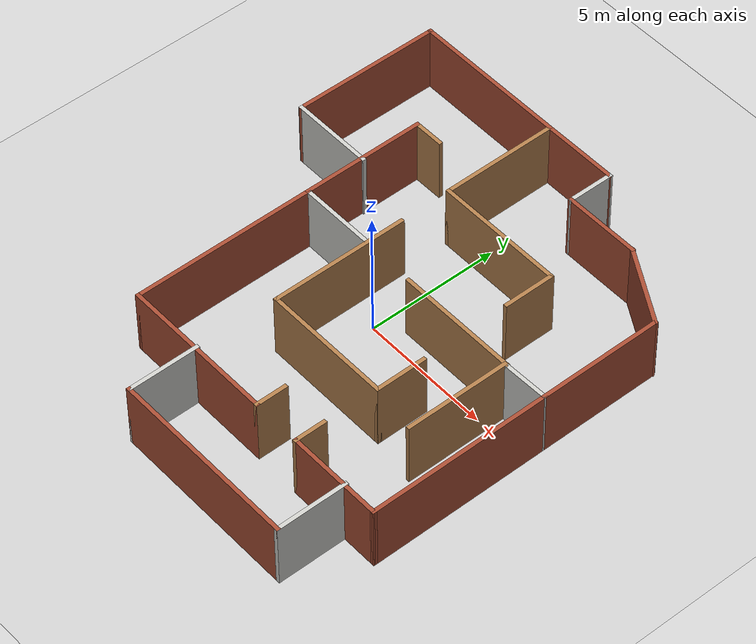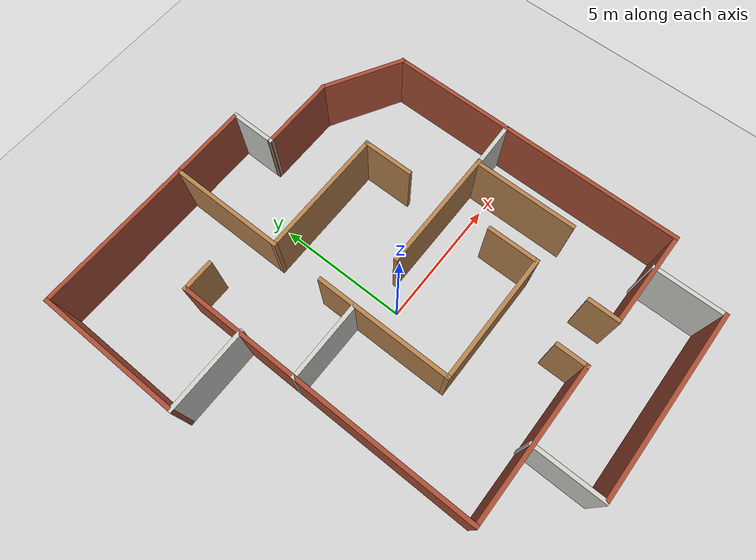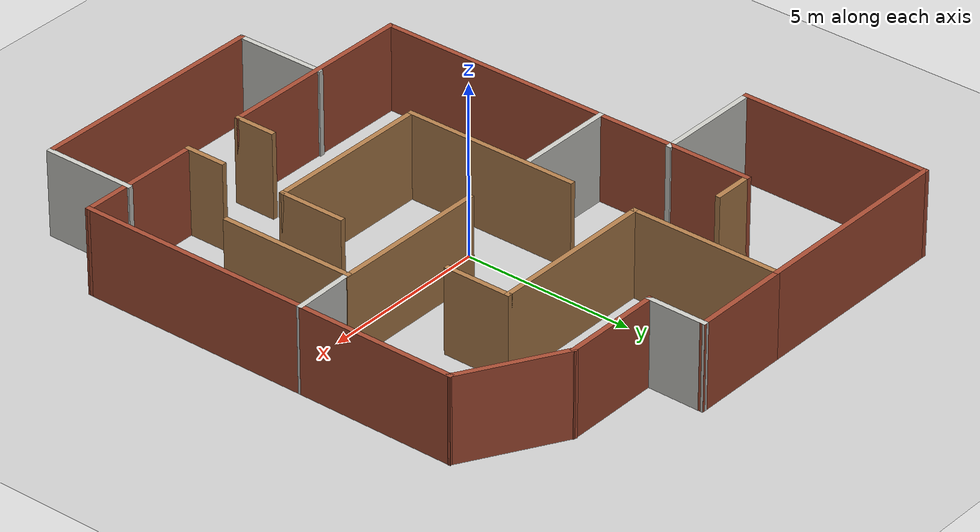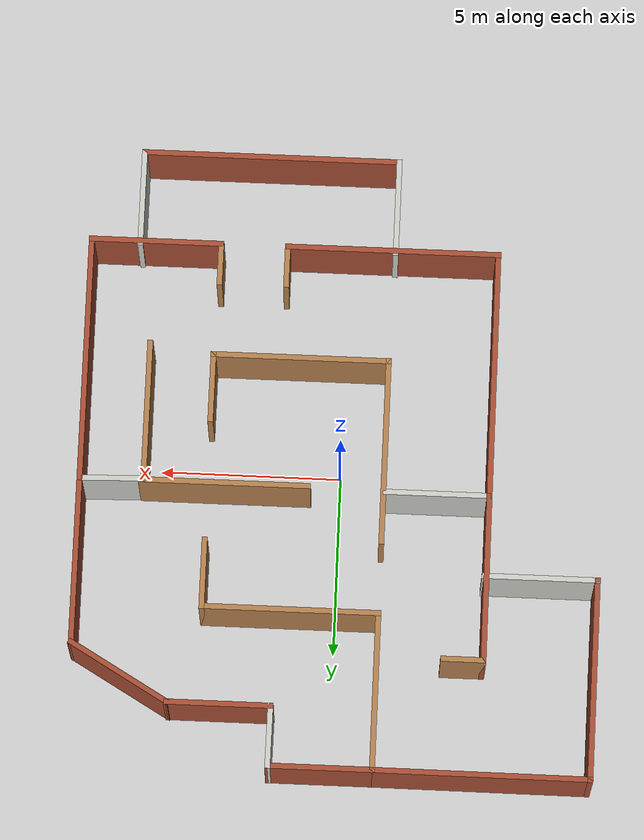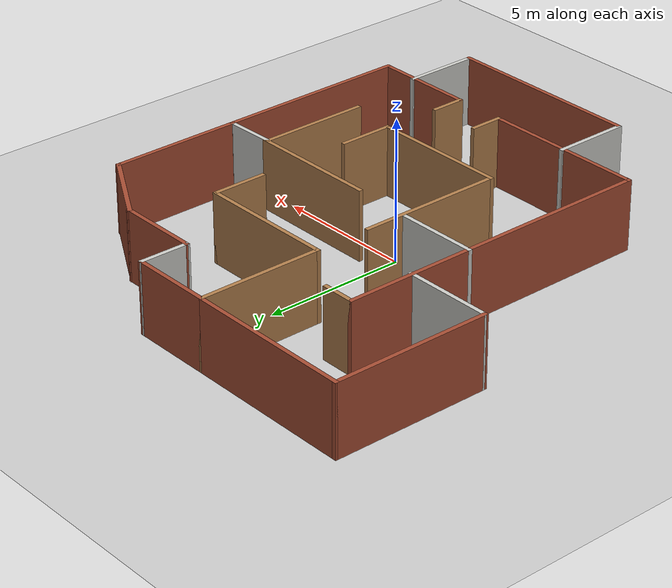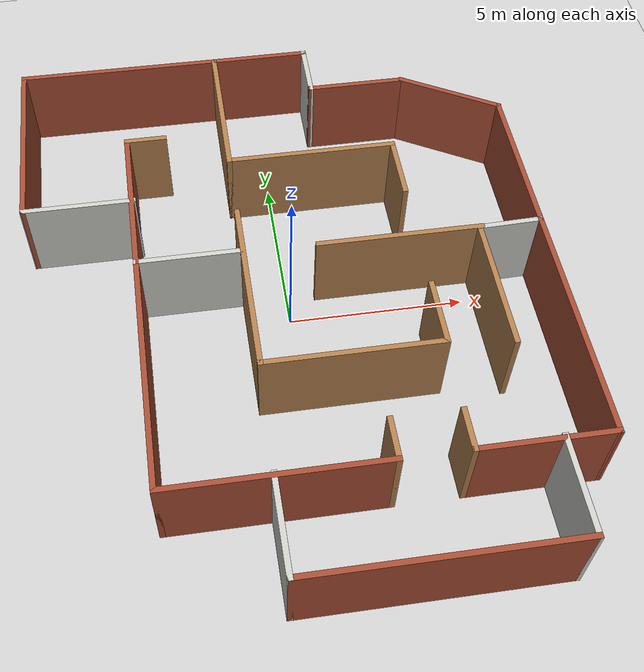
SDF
<sdf version="1.6">
 <world name="default">
  <light name="sun" type="directional">
   <pose>0 0 10 0 -0 0</pose>
   <diffuse>0.8 0.8 0.8 1</diffuse>
   <specular>0.2 0.2 0.2 1</specular>
   <attenuation>
    <range>1000</range>
    <constant>0.9</constant>
    <linear>0.01</linear>
    <quadratic>0.001</quadratic>
   </attenuation>
   <direction>-0.5 0.1 -0.9</direction>
  </light>
  <model name="ground_plane">
   <static>1</static>
   <link name="link">
    <collision name="collision">
     <geometry><plane><normal>0 0 1</normal><size>100 100</size></plane></geometry>
     <surface><friction><ode><mu>100</mu><mu2>50</mu2></ode></friction></surface>
    </collision>
    <visual name="visual">
     <cast_shadows>0</cast_shadows>
     <geometry><plane><normal>0 0 1</normal><size>100 100</size></plane></geometry>
     <material>
      <script><uri>file://media/materials/scripts/gazebo.material</uri><name>Gazebo/Grey</name></script>
     </material>
    </visual>
   </link>
  </model>
  <gravity>0 0 -9.8</gravity>
  <magnetic_field>6e-06 2.3e-05 -4.2e-05</magnetic_field>
  <atmosphere type="adiabatic"/>
  <physics name="default_physics" default="0" type="ode">
   <max_step_size>0.001</max_step_size>
   <real_time_factor>1</real_time_factor>
   <real_time_update_rate>1000</real_time_update_rate>
  </physics>
  <scene><ambient>0.4 0.4 0.4 1</ambient><background>0.7 0.7 0.7 1</background><shadows>1</shadows></scene>
  <audio><device>default</device></audio>
  <spherical_coordinates>
   <surface_model>EARTH_WGS84</surface_model>
   <latitude_deg>0</latitude_deg>
   <longitude_deg>0</longitude_deg>
   <elevation>0</elevation>
   <heading_deg>0</heading_deg>
  </spherical_coordinates>
  <model name="dat160_world1">
   <link name="Wall_10">
    <collision name="Wall_10_Collision">
     <geometry><box><size>4.75 0.15 2.5</size></box></geometry>
     <pose>0 0 1.25 0 -0 0</pose>
    </collision>
    <visual name="Wall_10_Visual">
     <pose>0 0 1.25 0 -0 0</pose>
     <geometry><box><size>4.75 0.15 2.5</size></box></geometry>
     <material>
      <script><uri>file://media/materials/scripts/gazebo.material</uri><name>Gazebo/Wood</name></script>
      <ambient>1 1 1 1</ambient>
     </material>
     <meta><layer>0</layer></meta>
    </visual>
    <pose>3.16564 0.741197 0 0 -0 0</pose>
   </link>
   <link name="Wall_13">
    <collision name="Wall_13_Collision">
     <geometry><box><size>4.75 0.15 2.5</size></box></geometry>
     <pose>0 0 1.25 0 -0 0</pose>
    </collision>
    <visual name="Wall_13_Visual">
     <pose>0 0 1.25 0 -0 0</pose>
     <geometry><box><size>4.75 0.15 2.5</size></box></geometry>
     <material>
      <script><uri>file://media/materials/scripts/gazebo.material</uri><name>Gazebo/Bricks</name></script>
      <ambient>1 1 1 1</ambient>
     </material>
     <meta><layer>0</layer></meta>
    </visual>
    <pose>7.15717 3.06433 0 0 -0 1.5708</pose>
   </link>
   <link name="Wall_14">
    <collision name="Wall_14_Collision">
     <geometry><box><size>3.25 0.15 2.5</size></box></geometry>
     <pose>0 0 1.25 0 -0 0</pose>
    </collision>
    <visual name="Wall_14_Visual">
     <pose>0 0 1.25 0 -0 0</pose>
     <geometry><box><size>3.25 0.15 2.5</size></box></geometry>
     <material>
      <script><uri>file://media/materials/scripts/gazebo.material</uri><name>Gazebo/Bricks</name></script>
      <ambient>1 1 1 1</ambient>
     </material>
     <meta><layer>0</layer></meta>
    </visual>
    <pose>5.81483 6.13933 0 0 -0 2.61799</pose>
   </link>
   <link name="Wall_15">
    <collision name="Wall_15_Collision">
     <geometry><box><size>3 0.15 2.5</size></box></geometry>
     <pose>0 0 1.25 0 -0 0</pose>
    </collision>
    <visual name="Wall_15_Visual">
     <pose>0 0 1.25 0 -0 0</pose>
     <geometry><box><size>3 0.15 2.5</size></box></geometry>
     <material>
      <script><uri>file://media/materials/scripts/gazebo.material</uri><name>Gazebo/Bricks</name></script>
      <ambient>1 1 1 1</ambient>
     </material>
     <meta><layer>0</layer></meta>
    </visual>
    <pose>3.04749 6.91433 0 0 -0 3.14159</pose>
   </link>
   <link name="Wall_17">
    <collision name="Wall_17_Collision">
     <geometry><box><size>4.5 0.15 2.5</size></box></geometry>
     <pose>0 0 1.25 0 -0 0</pose>
    </collision>
    <visual name="Wall_17_Visual">
     <pose>0 0 1.25 0 -0 0</pose>
     <geometry><box><size>4.5 0.15 2.5</size></box></geometry>
     <material>
      <script><uri>file://media/materials/scripts/gazebo.material</uri><name>Gazebo/Wood</name></script>
      <ambient>1 1 1 1</ambient>
     </material>
     <meta><layer>0</layer></meta>
    </visual>
    <pose>-1.21448 6.39319 0 0 -0 1.5708</pose>
   </link>
   <link name="Wall_18">
    <collision name="Wall_18_Collision">
     <geometry><box><size>3 0.15 2.5</size></box></geometry>
     <pose>0 0 1.25 0 -0 0</pose>
    </collision>
    <visual name="Wall_18_Visual">
     <pose>0 0 1.25 0 -0 0</pose>
     <geometry><box><size>3 0.15 2.5</size></box></geometry>
     <material>
      <script><uri>file://media/materials/scripts/gazebo.material</uri><name>Gazebo/Bricks</name></script>
      <ambient>1 1 1 1</ambient>
     </material>
     <meta><layer>0</layer></meta>
    </visual>
    <pose>0.210516 8.56819 0 0 -0 0</pose>
   </link>
   <link name="Wall_19">
    <collision name="Wall_19_Collision">
     <geometry><box><size>1.80392 0.15 2.5</size></box></geometry>
     <pose>0 0 1.25 0 -0 0</pose>
    </collision>
    <visual name="Wall_19_Visual">
     <pose>0 0 1.25 0 -0 0</pose>
     <geometry><box><size>1.80392 0.15 2.5</size></box></geometry>
     <material>
      <script><uri>file://media/materials/scripts/gazebo.material</uri><name>Gazebo/CeilingTiled</name></script>
      <ambient>1 1 1 1</ambient>
     </material>
     <meta><layer>0</layer></meta>
    </visual>
    <pose>1.629 7.74126 0 0 -0 -1.57867</pose>
   </link>
   <link name="Wall_21">
    <collision name="Wall_21_Collision">
     <geometry><box><size>3 0.15 2.5</size></box></geometry>
     <pose>0 0 1.25 0 -0 0</pose>
    </collision>
    <visual name="Wall_21_Visual">
     <pose>0 0 1.25 0 -0 0</pose>
     <geometry><box><size>3 0.15 2.5</size></box></geometry>
     <material>
      <script><uri>file://media/materials/scripts/gazebo.material</uri><name>Gazebo/CeilingTiled</name></script>
      <ambient>1 1 1 1</ambient>
     </material>
     <meta><layer>0</layer></meta>
    </visual>
    <pose>-2.7105 0.810589 0 0 -0 3.14159</pose>
   </link>
   <link name="Wall_22">
    <collision name="Wall_22_Collision">
     <geometry><box><size>7 0.15 2.5</size></box></geometry>
     <pose>0 0 1.25 0 -0 0</pose>
    </collision>
    <visual name="Wall_22_Visual">
     <pose>0 0 1.25 0 -0 0</pose>
     <geometry><box><size>7 0.15 2.5</size></box></geometry>
     <material>
      <script><uri>file://media/materials/scripts/gazebo.material</uri><name>Gazebo/Bricks</name></script>
      <ambient>1 1 1 1</ambient>
     </material>
     <meta><layer>0</layer></meta>
    </visual>
    <pose>-4.1355 -2.61441 0 0 -0 -1.5708</pose>
   </link>
   <link name="Wall_23">
    <collision name="Wall_23_Collision">
     <geometry><box><size>6 0.15 2.5</size></box></geometry>
     <pose>0 0 1.25 0 -0 0</pose>
    </collision>
    <visual name="Wall_23_Visual">
     <pose>0 0 1.25 0 -0 0</pose>
     <geometry><box><size>6 0.15 2.5</size></box></geometry>
     <material>
      <script><uri>file://media/materials/scripts/gazebo.material</uri><name>Gazebo/Bricks</name></script>
      <ambient>1 1 1 1</ambient>
     </material>
     <meta><layer>0</layer></meta>
    </visual>
    <pose>-1.2105 -6.03941 0 0 -0 0</pose>
   </link>
   <link name="Wall_24">
    <collision name="Wall_24_Collision">
     <geometry><box><size>1.25 0.15 2.5</size></box></geometry>
     <pose>0 0 1.25 0 -0 0</pose>
    </collision>
    <visual name="Wall_24_Visual">
     <pose>0 0 1.25 0 -0 0</pose>
     <geometry><box><size>1.25 0.15 2.5</size></box></geometry>
     <material>
      <script><uri>file://media/materials/scripts/gazebo.material</uri><name>Gazebo/Wood</name></script>
      <ambient>1 1 1 1</ambient>
     </material>
     <meta><layer>0</layer></meta>
    </visual>
    <pose>1.7145 -5.48941 0 0 -0 1.5708</pose>
   </link>
   <link name="Wall_26">
    <collision name="Wall_26_Collision">
     <geometry><box><size>4 0.15 2.5</size></box></geometry>
     <pose>0 0 1.25 0 -0 0</pose>
    </collision>
    <visual name="Wall_26_Visual">
     <pose>0 0 1.25 0 -0 0</pose>
     <geometry><box><size>4 0.15 2.5</size></box></geometry>
     <material>
      <script><uri>file://media/materials/scripts/gazebo.material</uri><name>Gazebo/Wood</name></script>
      <ambient>1 1 1 1</ambient>
     </material>
     <meta><layer>0</layer></meta>
    </visual>
    <pose>5.39924 -1.20693 0 0 -0 -1.5708</pose>
   </link>
   <link name="Wall_29">
    <collision name="Wall_29_Collision">
     <geometry><box><size>1.25 0.15 2.5</size></box></geometry>
     <pose>0 0 1.25 0 -0 0</pose>
    </collision>
    <visual name="Wall_29_Visual">
     <pose>0 0 1.25 0 -0 0</pose>
     <geometry><box><size>1.25 0.15 2.5</size></box></geometry>
     <material>
      <script><uri>file://media/materials/scripts/gazebo.material</uri><name>Gazebo/Wood</name></script>
      <ambient>1 1 1 1</ambient>
     </material>
     <meta><layer>0</layer></meta>
    </visual>
    <pose>3.5645 -5.48941 0 0 -0 -1.5708</pose>
   </link>
   <link name="Wall_3">
    <collision name="Wall_3_Collision">
     <geometry><box><size>5 0.15 2.5</size></box></geometry>
     <pose>0 0 1.25 0 -0 0</pose>
    </collision>
    <visual name="Wall_3_Visual">
     <pose>0 0 1.25 0 -0 0</pose>
     <geometry><box><size>5 0.15 2.5</size></box></geometry>
     <material>
      <script><uri>file://media/materials/scripts/gazebo.material</uri><name>Gazebo/Wood</name></script>
      <ambient>1 1 1 1</ambient>
     </material>
     <meta><layer>0</layer></meta>
    </visual>
    <pose>1.21052 4.21819 0 0 -0 0</pose>
   </link>
   <link name="Wall_30">
    <collision name="Wall_30_Collision">
     <geometry><box><size>3.75 0.15 2.5</size></box></geometry>
     <pose>0 0 1.25 0 -0 0</pose>
    </collision>
    <visual name="Wall_30_Visual">
     <pose>0 0 1.25 0 -0 0</pose>
     <geometry><box><size>3.75 0.15 2.5</size></box></geometry>
     <material>
      <script><uri>file://media/materials/scripts/gazebo.material</uri><name>Gazebo/Bricks</name></script>
      <ambient>1 1 1 1</ambient>
     </material>
     <meta><layer>0</layer></meta>
    </visual>
    <pose>5.3645 -6.03941 0 0 -0 0</pose>
   </link>
   <link name="Wall_31">
    <collision name="Wall_31_Collision">
     <geometry><box><size>6.95374 0.15 2.5</size></box></geometry>
     <pose>0 0 1.25 0 -0 0</pose>
    </collision>
    <visual name="Wall_31_Visual">
     <pose>0 0 1.25 0 -0 0</pose>
     <geometry><box><size>6.95374 0.15 2.5</size></box></geometry>
     <material>
      <script><uri>file://media/materials/scripts/gazebo.material</uri><name>Gazebo/Bricks</name></script>
      <ambient>1 1 1 1</ambient>
     </material>
     <meta><layer>0</layer></meta>
    </visual>
    <pose>7.16083 -2.63754 0 0 -0 1.57187</pose>
   </link>
   <link name="Wall_33">
    <collision name="Wall_33_Collision">
     <geometry><box><size>5.25 0.15 2.5</size></box></geometry>
     <pose>0 0 1.25 0 -0 0</pose>
    </collision>
    <visual name="Wall_33_Visual">
     <pose>0 0 1.25 0 -0 0</pose>
     <geometry><box><size>5.25 0.15 2.5</size></box></geometry>
     <material>
      <script><uri>file://media/materials/scripts/gazebo.material</uri><name>Gazebo/Wood</name></script>
      <ambient>1 1 1 1</ambient>
     </material>
     <meta><layer>0</layer></meta>
    </visual>
    <pose>-1.21448 -0.331806 0 0 -0 1.5708</pose>
   </link>
   <link name="Wall_35">
    <collision name="Wall_35_Collision">
     <geometry><box><size>4.75 0.15 2.5</size></box></geometry>
     <pose>0 0 1.25 0 -0 0</pose>
    </collision>
    <visual name="Wall_35_Visual">
     <pose>0 0 1.25 0 -0 0</pose>
     <geometry><box><size>4.75 0.15 2.5</size></box></geometry>
     <material>
      <script><uri>file://media/materials/scripts/gazebo.material</uri><name>Gazebo/Bricks</name></script>
      <ambient>1 1 1 1</ambient>
     </material>
     <meta><layer>0</layer></meta>
    </visual>
    <pose>-4.1355 3.11059 0 0 -0 1.5708</pose>
   </link>
   <link name="Wall_36">
    <collision name="Wall_36_Collision">
     <geometry><box><size>1.25 0.15 2.5</size></box></geometry>
     <pose>0 0 1.25 0 -0 0</pose>
    </collision>
    <visual name="Wall_36_Visual">
     <pose>0 0 1.25 0 -0 0</pose>
     <geometry><box><size>1.25 0.15 2.5</size></box></geometry>
     <material>
      <script><uri>file://media/materials/scripts/gazebo.material</uri><name>Gazebo/Wood</name></script>
      <ambient>1 1 1 1</ambient>
     </material>
     <meta><layer>0</layer></meta>
    </visual>
    <pose>-3.5855 5.41059 0 0 -0 0</pose>
   </link>
   <link name="Wall_38">
    <collision name="Wall_38_Collision">
     <geometry><box><size>3.25 0.15 2.5</size></box></geometry>
     <pose>0 0 1.25 0 -0 0</pose>
    </collision>
    <visual name="Wall_38_Visual">
     <pose>0 0 1.25 0 -0 0</pose>
     <geometry><box><size>3.25 0.15 2.5</size></box></geometry>
     <material>
      <script><uri>file://media/materials/scripts/gazebo.material</uri><name>Gazebo/CeilingTiled</name></script>
      <ambient>1 1 1 1</ambient>
     </material>
     <meta><layer>0</layer></meta>
    </visual>
    <pose>-5.63431 3.05426 0 0 -0 3.14159</pose>
   </link>
   <link name="Wall_39">
    <collision name="Wall_39_Collision">
     <geometry><box><size>5.68548 0.15 2.5</size></box></geometry>
     <pose>0 0 1.25 0 -0 0</pose>
    </collision>
    <visual name="Wall_39_Visual">
     <pose>0 0 1.25 0 -0 0</pose>
     <geometry><box><size>5.68548 0.15 2.5</size></box></geometry>
     <material>
      <script><uri>file://media/materials/scripts/gazebo.material</uri><name>Gazebo/Bricks</name></script>
      <ambient>1 1 1 1</ambient>
     </material>
     <meta><layer>0</layer></meta>
    </visual>
    <pose>-7.17274 5.82178 0 0 -0 1.56662</pose>
   </link>
   <link name="Wall_4">
    <collision name="Wall_4_Collision">
     <geometry><box><size>2 0.15 2.5</size></box></geometry>
     <pose>0 0 1.25 0 -0 0</pose>
    </collision>
    <visual name="Wall_4_Visual">
     <pose>0 0 1.25 0 -0 0</pose>
     <geometry><box><size>2 0.15 2.5</size></box></geometry>
     <material>
      <script><uri>file://media/materials/scripts/gazebo.material</uri><name>Gazebo/Wood</name></script>
      <ambient>1 1 1 1</ambient>
     </material>
     <meta><layer>0</layer></meta>
    </visual>
    <pose>3.63552 3.29319 0 0 -0 -1.5708</pose>
   </link>
   <link name="Wall_43">
    <collision name="Wall_43_Collision">
     <geometry><box><size>6.09673 0.15 2.5</size></box></geometry>
     <pose>0 0 1.25 0 -0 0</pose>
    </collision>
    <visual name="Wall_43_Visual">
     <pose>0 0 1.25 0 -0 0</pose>
     <geometry><box><size>6.09673 0.15 2.5</size></box></geometry>
     <material>
      <script><uri>file://media/materials/scripts/gazebo.material</uri><name>Gazebo/Bricks</name></script>
      <ambient>1 1 1 1</ambient>
     </material>
     <meta><layer>0</layer></meta>
    </visual>
    <pose>-4.18783 8.57875 0 0 -0 3.13804</pose>
   </link>
   <link name="Wall_45">
    <collision name="Wall_45_Collision">
     <geometry><box><size>2.75 0.15 2.5</size></box></geometry>
     <pose>0 0 1.25 0 -0 0</pose>
    </collision>
    <visual name="Wall_45_Visual">
     <pose>0 0 1.25 0 -0 0</pose>
     <geometry><box><size>2.75 0.15 2.5</size></box></geometry>
     <material>
      <script><uri>file://media/materials/scripts/gazebo.material</uri><name>Gazebo/CeilingTiled</name></script>
      <ambient>1 1 1 1</ambient>
     </material>
     <meta><layer>0</layer></meta>
    </visual>
    <pose>-1.2855 -7.28981 0 0 -0 -1.5708</pose>
   </link>
   <link name="Wall_46">
    <collision name="Wall_46_Collision">
     <geometry><box><size>7.25 0.15 2.5</size></box></geometry>
     <pose>0 0 1.25 0 -0 0</pose>
    </collision>
    <visual name="Wall_46_Visual">
     <pose>0 0 1.25 0 -0 0</pose>
     <geometry><box><size>7.25 0.15 2.5</size></box></geometry>
     <material>
      <script><uri>file://media/materials/scripts/gazebo.material</uri><name>Gazebo/Bricks</name></script>
      <ambient>1 1 1 1</ambient>
     </material>
     <meta><layer>0</layer></meta>
    </visual>
    <pose>2.2645 -8.58981 0 0 -0 0</pose>
   </link>
   <link name="Wall_47">
    <collision name="Wall_47_Collision">
     <geometry><box><size>2.75 0.15 2.5</size></box></geometry>
     <pose>0 0 1.25 0 -0 0</pose>
    </collision>
    <visual name="Wall_47_Visual">
     <pose>0 0 1.25 0 -0 0</pose>
     <geometry><box><size>2.75 0.15 2.5</size></box></geometry>
     <material>
      <script><uri>file://media/materials/scripts/gazebo.material</uri><name>Gazebo/CeilingTiled</name></script>
      <ambient>1 1 1 1</ambient>
     </material>
     <meta><layer>0</layer></meta>
    </visual>
    <pose>5.8145 -7.28981 0 0 -0 1.5708</pose>
   </link>
   <link name="Wall_49">
    <collision name="Wall_49_Collision">
     <geometry><box><size>1.90854 0.15 2.5</size></box></geometry>
     <pose>0 0 1.25 0 -0 0</pose>
    </collision>
    <visual name="Wall_49_Visual">
     <pose>0 0 1.25 0 -0 0</pose>
     <geometry><box><size>1.90854 0.15 2.5</size></box></geometry>
     <material>
      <script><uri>file://media/materials/scripts/gazebo.material</uri><name>Gazebo/CeilingTiled</name></script>
      <ambient>1 1 1 1</ambient>
     </material>
     <meta><layer>0</layer></meta>
    </visual>
    <pose>6.2782 0.741197 0 0 -0 0.02631</pose>
   </link>
   <link name="Wall_7">
    <collision name="Wall_7_Collision">
     <geometry><box><size>5 0.15 2.5</size></box></geometry>
     <pose>0 0 1.25 0 -0 0</pose>
    </collision>
    <visual name="Wall_7_Visual">
     <pose>0 0 1.25 0 -0 0</pose>
     <geometry><box><size>5 0.15 2.5</size></box></geometry>
     <material>
      <script><uri>file://media/materials/scripts/gazebo.material</uri><name>Gazebo/Wood</name></script>
      <ambient>1 1 1 1</ambient>
     </material>
     <meta><layer>0</layer></meta>
    </visual>
    <pose>1.21052 -2.88181 0 0 -0 0</pose>
   </link>
   <link name="Wall_8">
    <collision name="Wall_8_Collision">
     <geometry><box><size>2 0.15 2.5</size></box></geometry>
     <pose>0 0 1.25 0 -0 0</pose>
    </collision>
    <visual name="Wall_8_Visual">
     <pose>0 0 1.25 0 -0 0</pose>
     <geometry><box><size>2 0.15 2.5</size></box></geometry>
     <material>
      <script><uri>file://media/materials/scripts/gazebo.material</uri><name>Gazebo/Wood</name></script>
      <ambient>1 1 1 1</ambient>
     </material>
     <meta><layer>0</layer></meta>
    </visual>
    <pose>3.63552 -1.95681 0 0 -0 1.5708</pose>
   </link>
   <static>1</static>
  </model>
 </world>
</sdf>
